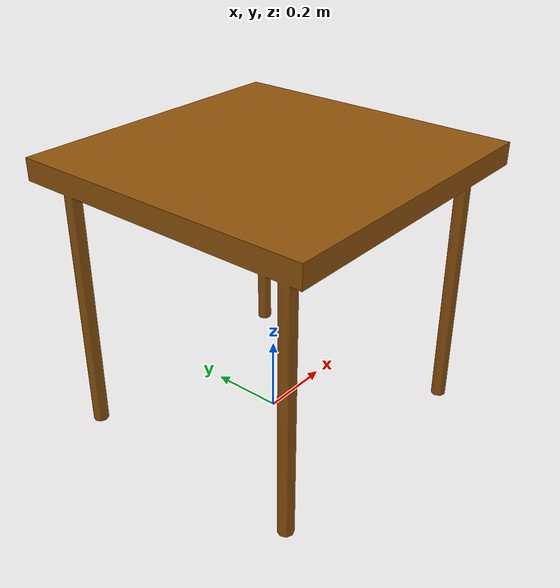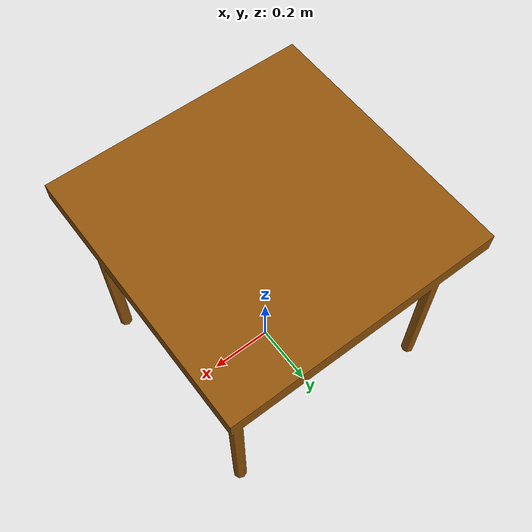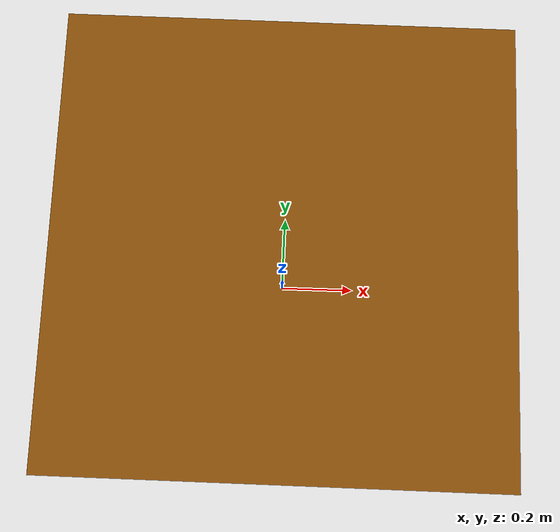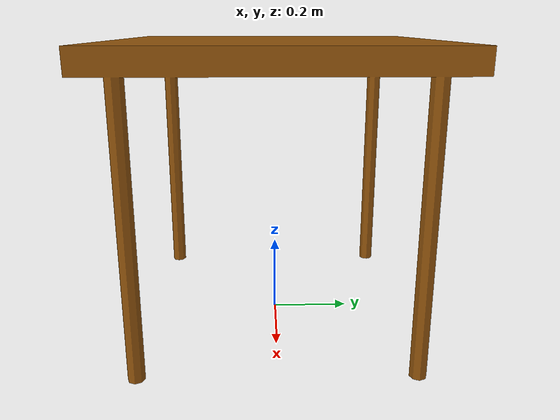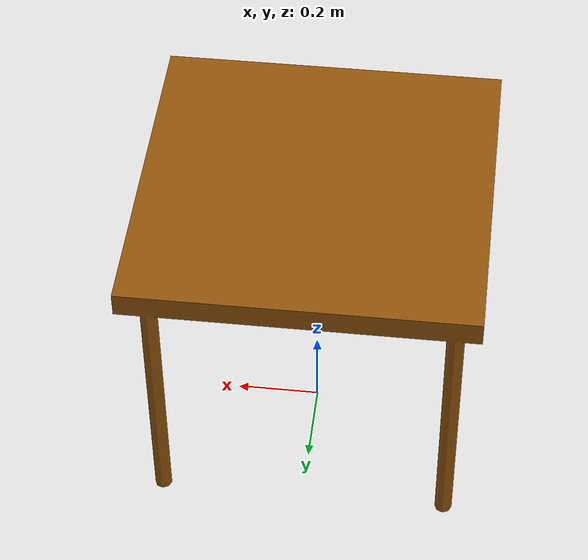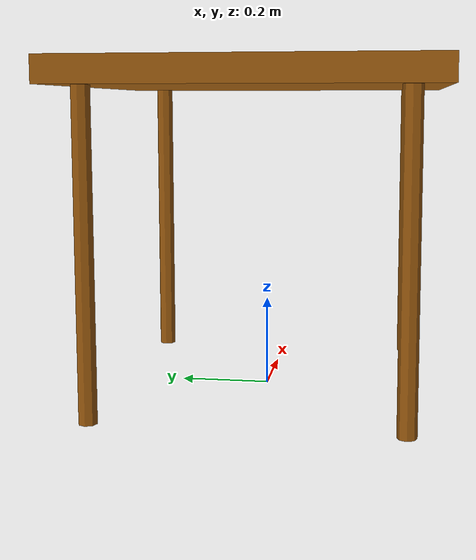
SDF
<?xml version="1.0" ?>
<sdf version="1.0">
  <model name="square_table">
    <static>true</static>
    <link name="table_link">
      <collision name="surface">
        <pose>0 0 0.7115 0 0 0</pose>
        <geometry>
          <box>
            <size>0.8 0.8 0.057</size>
          </box>
        </geometry>
        <surface>
          <friction>
            <ode>
              <mu>0.6</mu>
              <mu2>0.6</mu2>
            </ode>
          </friction>
        </surface>
      </collision>

      <collision name="front_left_leg">
        <pose>0.3412 0.3212 0.3415 0 0 0</pose>
        <geometry>
          <cylinder>
            <radius>0.02</radius>
            <length>0.683</length>
          </cylinder>
        </geometry>
      </collision>

      <collision name="front_right_leg">
        <pose>0.3412 -0.3212 0.3415 0 0 0</pose>
        <geometry>
          <cylinder>
            <radius>0.02</radius>
            <length>0.683</length>
          </cylinder>
        </geometry>
      </collision>

      <collision name="back_right_leg">
        <pose>-0.3412 -0.3212 0.3415 0 0 0</pose>
        <geometry>
          <cylinder>
            <radius>0.02</radius>
            <length>0.683</length>
          </cylinder>
        </geometry>
      </collision>

      <collision name="back_left_leg">
        <pose>-0.3412 0.3212 0.3415 0 0 0</pose>
        <geometry>
          <cylinder>
            <radius>0.02</radius>
            <length>0.683</length>
          </cylinder>
        </geometry>
      </collision>

      <visual name="table_mesh">
	<cast_shadows>true</cast_shadows>
        <geometry>
          <mesh>
	    <uri>model://square_table/meshes/model.dae</uri>
	  </mesh>
        </geometry>
      </visual>
    </link>
  </model>
</sdf>
